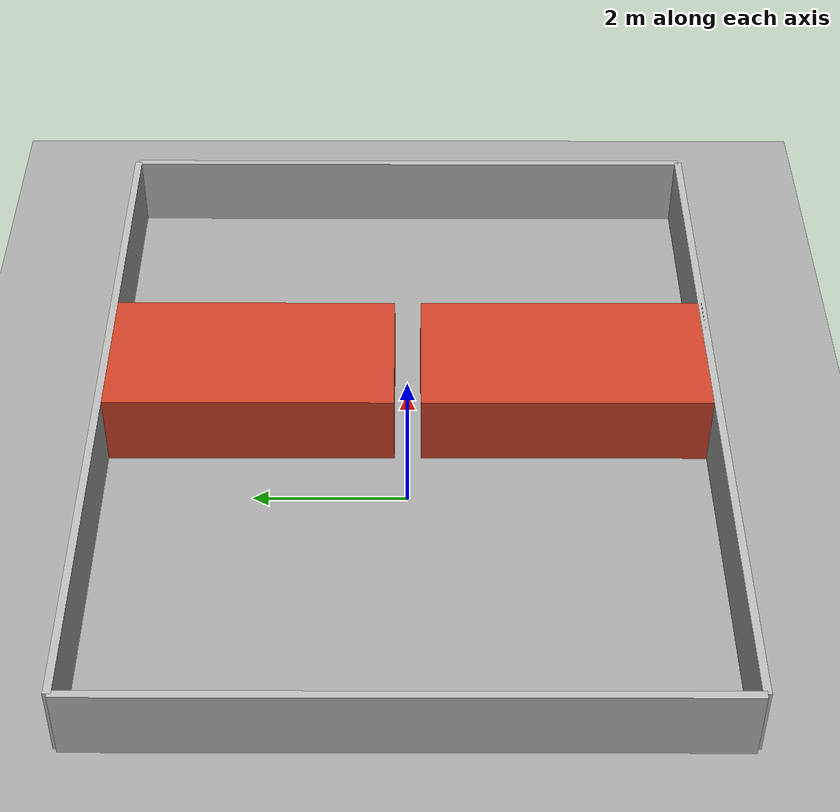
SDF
<?xml version="1.0"?>
<sdf version="1.6">
  <world name="navapex">
    <physics name="default" type="ode">
      <max_step_size>0.005</max_step_size>
      <real_time_update_rate>200</real_time_update_rate>
    </physics>
    <gravity>0 0 -9.8</gravity>
    <gui fullscreen="false">
      <camera name="user_camera">
        <pose>7 -9 8 0 0.65 2.15</pose>
        <view_controller>orbit</view_controller>
      </camera>
    </gui>
    <light name="sun" type="directional">
      <pose>0 0 10 0 0 0</pose><diffuse>0.8 0.8 0.8 1</diffuse>
      <specular>0.2 0.2 0.2 1</specular><direction>-0.5 -0.5 -1</direction>
    </light>
    <model name="ground_plane">
      <static>true</static><link name="ground">
        <collision name="ground"><geometry><plane><normal>0 0 1</normal><size>20 20</size></plane></geometry></collision>
        <visual name="ground"><geometry><plane><normal>0 0 1</normal><size>20 20</size></plane></geometry>
          <material><ambient>0.65 0.65 0.65 1</ambient><diffuse>0.65 0.65 0.65 1</diffuse></material></visual>
      </link>
    </model>
    <model name="west_wall"><static>true</static><pose>-4 0 0.5 0 0 0</pose><link name="wall">
      <collision name="wall"><geometry><box><size>0.1 8 1</size></box></geometry></collision>
      <visual name="wall"><geometry><box><size>0.1 8 1</size></box></geometry></visual></link></model>
    <model name="east_wall"><static>true</static><pose>6 0 0.5 0 0 0</pose><link name="wall">
      <collision name="wall"><geometry><box><size>0.1 8 1</size></box></geometry></collision>
      <visual name="wall"><geometry><box><size>0.1 8 1</size></box></geometry></visual></link></model>
    <model name="south_wall"><static>true</static><pose>1 -4 0.5 0 0 0</pose><link name="wall">
      <collision name="wall"><geometry><box><size>10 0.1 1</size></box></geometry></collision>
      <visual name="wall"><geometry><box><size>10 0.1 1</size></box></geometry></visual></link></model>
    <model name="north_wall"><static>true</static><pose>1 4 0.5 0 0 0</pose><link name="wall">
      <collision name="wall"><geometry><box><size>10 0.1 1</size></box></geometry></collision>
      <visual name="wall"><geometry><box><size>10 0.1 1</size></box></geometry></visual></link></model>
    <model name="channel_left_wall"><static>true</static><pose>1.75 2.0875 0.5 0 0 0</pose><link name="wall">
      <collision name="wall"><geometry><box><size>2 3.825 1</size></box></geometry></collision>
      <visual name="wall"><geometry><box><size>2 3.825 1</size></box></geometry>
        <material><ambient>0.8 0.25 0.15 1</ambient><diffuse>0.8 0.25 0.15 1</diffuse></material></visual></link></model>
    <model name="channel_right_wall"><static>true</static><pose>1.75 -2.0875 0.5 0 0 0</pose><link name="wall">
      <collision name="wall"><geometry><box><size>2 3.825 1</size></box></geometry></collision>
      <visual name="wall"><geometry><box><size>2 3.825 1</size></box></geometry>
        <material><ambient>0.8 0.25 0.15 1</ambient><diffuse>0.8 0.25 0.15 1</diffuse></material></visual></link></model>
  </world>
</sdf>
